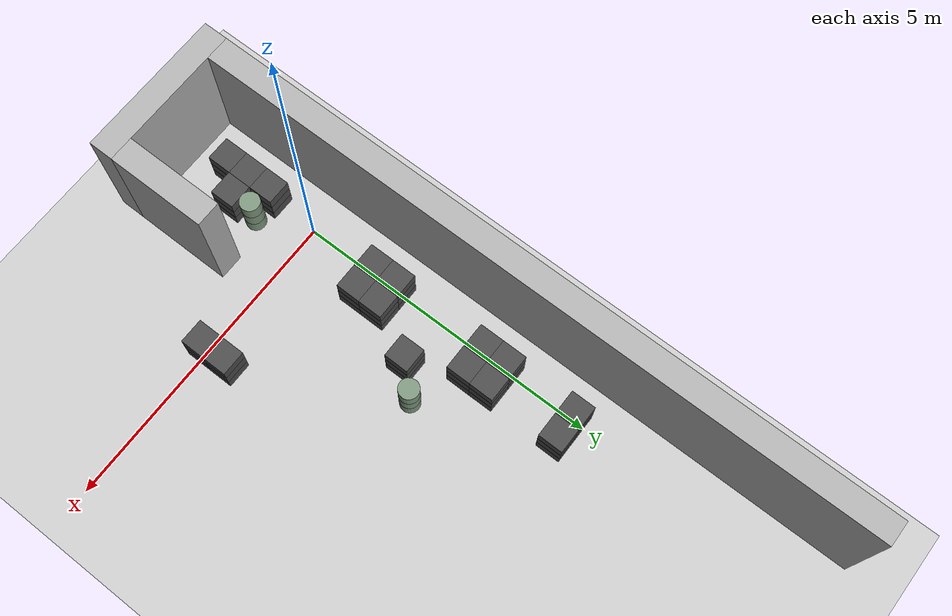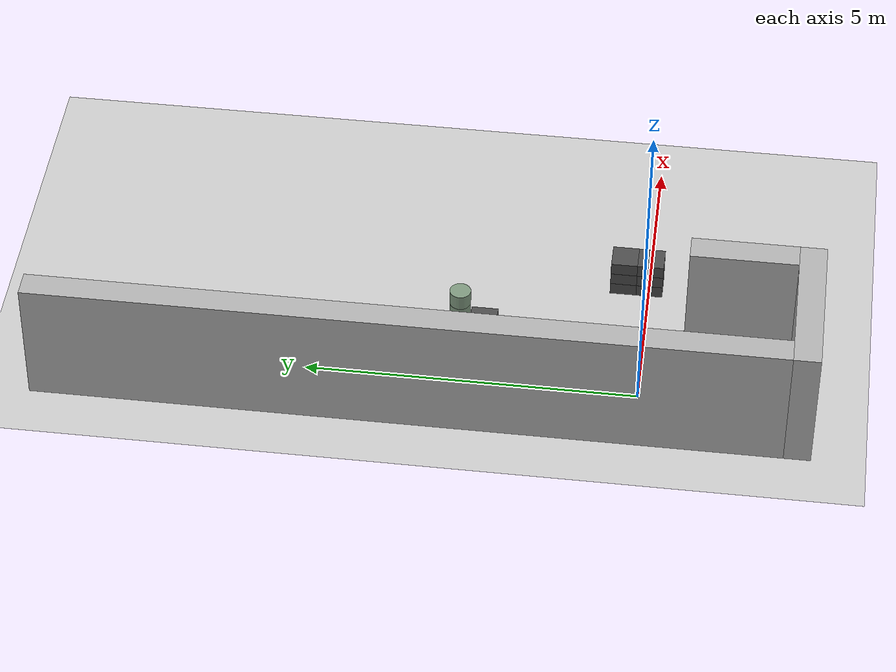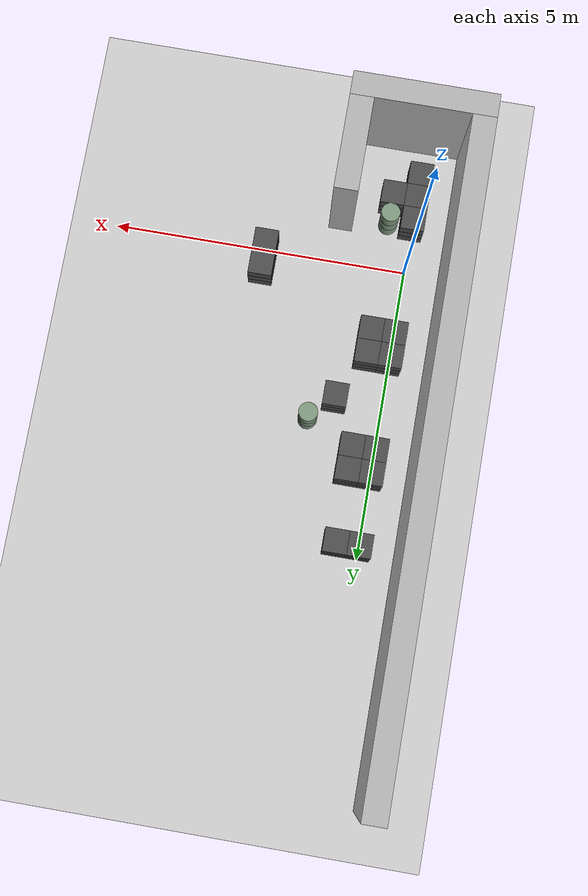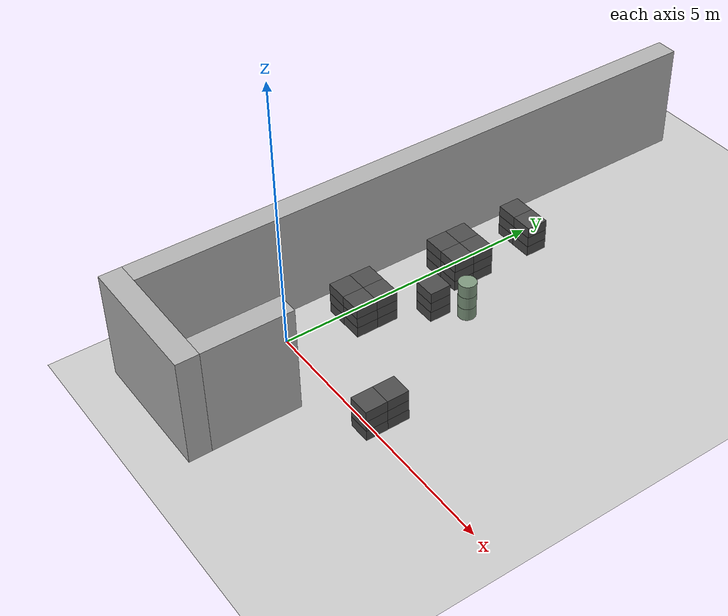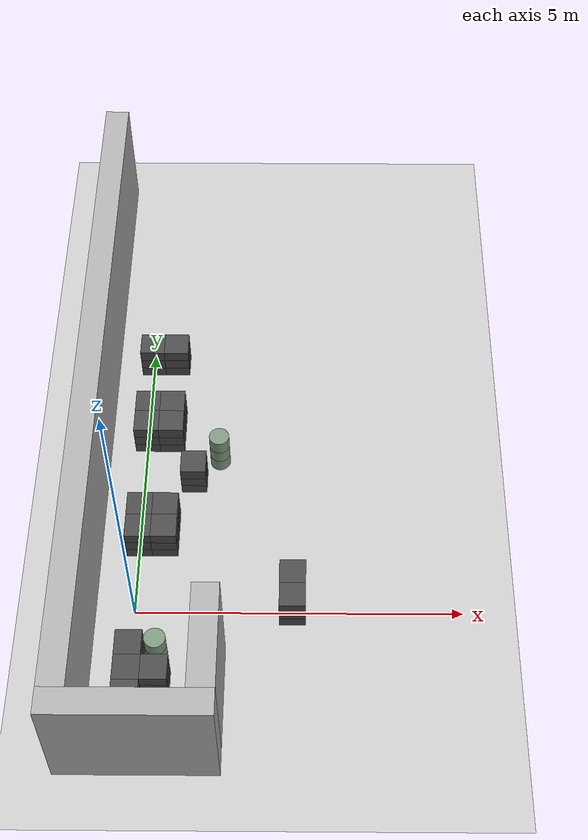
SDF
<sdf version="1.6">
 <world name="default">
  <include><uri>model://ground_plane</uri></include>
  <model name="wall_0">
   <pose frame="sim_world">-0.8 3.4 1.0 0 0 0</pose>
   <static>True</static>
   <link name="wall_0_link">
    <inertial>
     <mass>100</mass>
     <inertia>
      <ixx>0.166667</ixx>
      <ixy>0</ixy>
      <ixz>0</ixz>
      <iyy>0.166667</iyy>
      <iyz>0</iyz>
      <izz>0.166667</izz>
     </inertia>
    </inertial>
    <collision name="wall_0_collision">
     <geometry><box><size>0.4 11.200000000000001 2.0</size></box></geometry>
     <max_contacts>100</max_contacts>
    </collision>
    <visual name="wall_0_visual">
     <geometry><box><size>0.4 11.200000000000001 2.0</size></box></geometry>
     <material><ambient>0.7 0.7 0.7 1</ambient><diffuse>0.7 0.7 0.7 1</diffuse></material>
    </visual>
   </link>
  </model>
  <model name="wall_1">
   <pose frame="sim_world">1.2 -1.4 1.0 0 0 0</pose>
   <static>True</static>
   <link name="wall_1_link">
    <inertial>
     <mass>100</mass>
     <inertia>
      <ixx>0.166667</ixx>
      <ixy>0</ixy>
      <ixz>0</ixz>
      <iyy>0.166667</iyy>
      <iyz>0</iyz>
      <izz>0.166667</izz>
     </inertia>
    </inertial>
    <collision name="wall_1_collision">
     <geometry><box><size>0.4 1.6 2.0</size></box></geometry>
     <max_contacts>100</max_contacts>
    </collision>
    <visual name="wall_1_visual">
     <geometry><box><size>0.4 1.6 2.0</size></box></geometry>
     <material><ambient>0.7 0.7 0.7 1</ambient><diffuse>0.7 0.7 0.7 1</diffuse></material>
    </visual>
   </link>
  </model>
  <model name="wall_7">
   <pose frame="sim_world">0.2 -2.4 1.0 0 0 0</pose>
   <static>True</static>
   <link name="wall_7_link">
    <inertial>
     <mass>100</mass>
     <inertia>
      <ixx>0.166667</ixx>
      <ixy>0</ixy>
      <ixz>0</ixz>
      <iyy>0.166667</iyy>
      <iyz>0</iyz>
      <izz>0.166667</izz>
     </inertia>
    </inertial>
    <collision name="wall_7_collision">
     <geometry><box><size>2.4000000000000004 0.4 2.0</size></box></geometry>
     <max_contacts>100</max_contacts>
    </collision>
    <visual name="wall_7_visual">
     <geometry><box><size>2.4000000000000004 0.4 2.0</size></box></geometry>
     <material><ambient>0.7 0.7 0.7 1</ambient><diffuse>0.7 0.7 0.7 1</diffuse></material>
    </visual>
   </link>
  </model>
  <model name="box_0">
   <pose frame="sim_world">0.0 -1.6 0.1 0 -0 0</pose>
   <static>True</static>
   <link name="box_0_link">
    <inertial>
     <mass>100</mass>
     <inertia>
      <ixx>0.166667</ixx>
      <ixy>0</ixy>
      <ixz>0</ixz>
      <iyy>0.166667</iyy>
      <iyz>0</iyz>
      <izz>0.166667</izz>
     </inertia>
    </inertial>
    <collision name="box_0_collision">
     <geometry><box><size>0.4 0.4 0.2</size></box></geometry>
     <max_contacts>100</max_contacts>
    </collision>
    <visual name="box_0_visual">
     <geometry><box><size>0.4 0.4 0.2</size></box></geometry>
     <material><ambient>0.3 0.3 0.3 1</ambient><diffuse>0.3 0.3 0.3 1</diffuse></material>
    </visual>
   </link>
  </model>
  <model name="box_1">
   <pose frame="sim_world">0.0 -1.6 0.3 0 -0 0</pose>
   <static>True</static>
   <link name="box_1_link">
    <inertial>
     <mass>100</mass>
     <inertia>
      <ixx>0.166667</ixx>
      <ixy>0</ixy>
      <ixz>0</ixz>
      <iyy>0.166667</iyy>
      <iyz>0</iyz>
      <izz>0.166667</izz>
     </inertia>
    </inertial>
    <collision name="box_1_collision">
     <geometry><box><size>0.4 0.4 0.2</size></box></geometry>
     <max_contacts>100</max_contacts>
    </collision>
    <visual name="box_1_visual">
     <geometry><box><size>0.4 0.4 0.2</size></box></geometry>
     <material><ambient>0.3 0.3 0.3 1</ambient><diffuse>0.3 0.3 0.3 1</diffuse></material>
    </visual>
   </link>
  </model>
  <model name="box_2">
   <pose frame="sim_world">0.0 -1.6 0.5 0 -0 0</pose>
   <static>True</static>
   <link name="box_2_link">
    <inertial>
     <mass>100</mass>
     <inertia>
      <ixx>0.166667</ixx>
      <ixy>0</ixy>
      <ixz>0</ixz>
      <iyy>0.166667</iyy>
      <iyz>0</iyz>
      <izz>0.166667</izz>
     </inertia>
    </inertial>
    <collision name="box_2_collision">
     <geometry><box><size>0.4 0.4 0.2</size></box></geometry>
     <max_contacts>100</max_contacts>
    </collision>
    <visual name="box_2_visual">
     <geometry><box><size>0.4 0.4 0.2</size></box></geometry>
     <material><ambient>0.3 0.3 0.3 1</ambient><diffuse>0.3 0.3 0.3 1</diffuse></material>
    </visual>
   </link>
  </model>
  <model name="box_3">
   <pose frame="sim_world">0.0 -1.2 0.1 0 -0 0</pose>
   <static>True</static>
   <link name="box_3_link">
    <inertial>
     <mass>100</mass>
     <inertia>
      <ixx>0.166667</ixx>
      <ixy>0</ixy>
      <ixz>0</ixz>
      <iyy>0.166667</iyy>
      <iyz>0</iyz>
      <izz>0.166667</izz>
     </inertia>
    </inertial>
    <collision name="box_3_collision">
     <geometry><box><size>0.4 0.4 0.2</size></box></geometry>
     <max_contacts>100</max_contacts>
    </collision>
    <visual name="box_3_visual">
     <geometry><box><size>0.4 0.4 0.2</size></box></geometry>
     <material><ambient>0.3 0.3 0.3 1</ambient><diffuse>0.3 0.3 0.3 1</diffuse></material>
    </visual>
   </link>
  </model>
  <model name="box_4">
   <pose frame="sim_world">0.0 -1.2 0.3 0 -0 0</pose>
   <static>True</static>
   <link name="box_4_link">
    <inertial>
     <mass>100</mass>
     <inertia>
      <ixx>0.166667</ixx>
      <ixy>0</ixy>
      <ixz>0</ixz>
      <iyy>0.166667</iyy>
      <iyz>0</iyz>
      <izz>0.166667</izz>
     </inertia>
    </inertial>
    <collision name="box_4_collision">
     <geometry><box><size>0.4 0.4 0.2</size></box></geometry>
     <max_contacts>100</max_contacts>
    </collision>
    <visual name="box_4_visual">
     <geometry><box><size>0.4 0.4 0.2</size></box></geometry>
     <material><ambient>0.3 0.3 0.3 1</ambient><diffuse>0.3 0.3 0.3 1</diffuse></material>
    </visual>
   </link>
  </model>
  <model name="box_5">
   <pose frame="sim_world">0.0 -1.2 0.5 0 -0 0</pose>
   <static>True</static>
   <link name="box_5_link">
    <inertial>
     <mass>100</mass>
     <inertia>
      <ixx>0.166667</ixx>
      <ixy>0</ixy>
      <ixz>0</ixz>
      <iyy>0.166667</iyy>
      <iyz>0</iyz>
      <izz>0.166667</izz>
     </inertia>
    </inertial>
    <collision name="box_5_collision">
     <geometry><box><size>0.4 0.4 0.2</size></box></geometry>
     <max_contacts>100</max_contacts>
    </collision>
    <visual name="box_5_visual">
     <geometry><box><size>0.4 0.4 0.2</size></box></geometry>
     <material><ambient>0.3 0.3 0.3 1</ambient><diffuse>0.3 0.3 0.3 1</diffuse></material>
    </visual>
   </link>
  </model>
  <model name="box_6">
   <pose frame="sim_world">0.0 -0.8 0.1 0 -0 0</pose>
   <static>True</static>
   <link name="box_6_link">
    <inertial>
     <mass>100</mass>
     <inertia>
      <ixx>0.166667</ixx>
      <ixy>0</ixy>
      <ixz>0</ixz>
      <iyy>0.166667</iyy>
      <iyz>0</iyz>
      <izz>0.166667</izz>
     </inertia>
    </inertial>
    <collision name="box_6_collision">
     <geometry><box><size>0.4 0.4 0.2</size></box></geometry>
     <max_contacts>100</max_contacts>
    </collision>
    <visual name="box_6_visual">
     <geometry><box><size>0.4 0.4 0.2</size></box></geometry>
     <material><ambient>0.3 0.3 0.3 1</ambient><diffuse>0.3 0.3 0.3 1</diffuse></material>
    </visual>
   </link>
  </model>
  <model name="box_7">
   <pose frame="sim_world">0.0 -0.8 0.3 0 -0 0</pose>
   <static>True</static>
   <link name="box_7_link">
    <inertial>
     <mass>100</mass>
     <inertia>
      <ixx>0.166667</ixx>
      <ixy>0</ixy>
      <ixz>0</ixz>
      <iyy>0.166667</iyy>
      <iyz>0</iyz>
      <izz>0.166667</izz>
     </inertia>
    </inertial>
    <collision name="box_7_collision">
     <geometry><box><size>0.4 0.4 0.2</size></box></geometry>
     <max_contacts>100</max_contacts>
    </collision>
    <visual name="box_7_visual">
     <geometry><box><size>0.4 0.4 0.2</size></box></geometry>
     <material><ambient>0.3 0.3 0.3 1</ambient><diffuse>0.3 0.3 0.3 1</diffuse></material>
    </visual>
   </link>
  </model>
  <model name="box_8">
   <pose frame="sim_world">0.0 -0.8 0.5 0 -0 0</pose>
   <static>True</static>
   <link name="box_8_link">
    <inertial>
     <mass>100</mass>
     <inertia>
      <ixx>0.166667</ixx>
      <ixy>0</ixy>
      <ixz>0</ixz>
      <iyy>0.166667</iyy>
      <iyz>0</iyz>
      <izz>0.166667</izz>
     </inertia>
    </inertial>
    <collision name="box_8_collision">
     <geometry><box><size>0.4 0.4 0.2</size></box></geometry>
     <max_contacts>100</max_contacts>
    </collision>
    <visual name="box_8_visual">
     <geometry><box><size>0.4 0.4 0.2</size></box></geometry>
     <material><ambient>0.3 0.3 0.3 1</ambient><diffuse>0.3 0.3 0.3 1</diffuse></material>
    </visual>
   </link>
  </model>
  <model name="box_9">
   <pose frame="sim_world">0.0 1.2 0.1 0 -0 0</pose>
   <static>True</static>
   <link name="box_9_link">
    <inertial>
     <mass>100</mass>
     <inertia>
      <ixx>0.166667</ixx>
      <ixy>0</ixy>
      <ixz>0</ixz>
      <iyy>0.166667</iyy>
      <iyz>0</iyz>
      <izz>0.166667</izz>
     </inertia>
    </inertial>
    <collision name="box_9_collision">
     <geometry><box><size>0.4 0.4 0.2</size></box></geometry>
     <max_contacts>100</max_contacts>
    </collision>
    <visual name="box_9_visual">
     <geometry><box><size>0.4 0.4 0.2</size></box></geometry>
     <material><ambient>0.3 0.3 0.3 1</ambient><diffuse>0.3 0.3 0.3 1</diffuse></material>
    </visual>
   </link>
  </model>
  <model name="box_10">
   <pose frame="sim_world">0.0 1.2 0.3 0 -0 0</pose>
   <static>True</static>
   <link name="box_10_link">
    <inertial>
     <mass>100</mass>
     <inertia>
      <ixx>0.166667</ixx>
      <ixy>0</ixy>
      <ixz>0</ixz>
      <iyy>0.166667</iyy>
      <iyz>0</iyz>
      <izz>0.166667</izz>
     </inertia>
    </inertial>
    <collision name="box_10_collision">
     <geometry><box><size>0.4 0.4 0.2</size></box></geometry>
     <max_contacts>100</max_contacts>
    </collision>
    <visual name="box_10_visual">
     <geometry><box><size>0.4 0.4 0.2</size></box></geometry>
     <material><ambient>0.3 0.3 0.3 1</ambient><diffuse>0.3 0.3 0.3 1</diffuse></material>
    </visual>
   </link>
  </model>
  <model name="box_11">
   <pose frame="sim_world">0.0 1.2 0.5 0 -0 0</pose>
   <static>True</static>
   <link name="box_11_link">
    <inertial>
     <mass>100</mass>
     <inertia>
      <ixx>0.166667</ixx>
      <ixy>0</ixy>
      <ixz>0</ixz>
      <iyy>0.166667</iyy>
      <iyz>0</iyz>
      <izz>0.166667</izz>
     </inertia>
    </inertial>
    <collision name="box_11_collision">
     <geometry><box><size>0.4 0.4 0.2</size></box></geometry>
     <max_contacts>100</max_contacts>
    </collision>
    <visual name="box_11_visual">
     <geometry><box><size>0.4 0.4 0.2</size></box></geometry>
     <material><ambient>0.3 0.3 0.3 1</ambient><diffuse>0.3 0.3 0.3 1</diffuse></material>
    </visual>
   </link>
  </model>
  <model name="box_12">
   <pose frame="sim_world">0.0 1.6 0.1 0 -0 0</pose>
   <static>True</static>
   <link name="box_12_link">
    <inertial>
     <mass>100</mass>
     <inertia>
      <ixx>0.166667</ixx>
      <ixy>0</ixy>
      <ixz>0</ixz>
      <iyy>0.166667</iyy>
      <iyz>0</iyz>
      <izz>0.166667</izz>
     </inertia>
    </inertial>
    <collision name="box_12_collision">
     <geometry><box><size>0.4 0.4 0.2</size></box></geometry>
     <max_contacts>100</max_contacts>
    </collision>
    <visual name="box_12_visual">
     <geometry><box><size>0.4 0.4 0.2</size></box></geometry>
     <material><ambient>0.3 0.3 0.3 1</ambient><diffuse>0.3 0.3 0.3 1</diffuse></material>
    </visual>
   </link>
  </model>
  <model name="box_13">
   <pose frame="sim_world">0.0 1.6 0.3 0 -0 0</pose>
   <static>True</static>
   <link name="box_13_link">
    <inertial>
     <mass>100</mass>
     <inertia>
      <ixx>0.166667</ixx>
      <ixy>0</ixy>
      <ixz>0</ixz>
      <iyy>0.166667</iyy>
      <iyz>0</iyz>
      <izz>0.166667</izz>
     </inertia>
    </inertial>
    <collision name="box_13_collision">
     <geometry><box><size>0.4 0.4 0.2</size></box></geometry>
     <max_contacts>100</max_contacts>
    </collision>
    <visual name="box_13_visual">
     <geometry><box><size>0.4 0.4 0.2</size></box></geometry>
     <material><ambient>0.3 0.3 0.3 1</ambient><diffuse>0.3 0.3 0.3 1</diffuse></material>
    </visual>
   </link>
  </model>
  <model name="box_14">
   <pose frame="sim_world">0.0 1.6 0.5 0 -0 0</pose>
   <static>True</static>
   <link name="box_14_link">
    <inertial>
     <mass>100</mass>
     <inertia>
      <ixx>0.166667</ixx>
      <ixy>0</ixy>
      <ixz>0</ixz>
      <iyy>0.166667</iyy>
      <iyz>0</iyz>
      <izz>0.166667</izz>
     </inertia>
    </inertial>
    <collision name="box_14_collision">
     <geometry><box><size>0.4 0.4 0.2</size></box></geometry>
     <max_contacts>100</max_contacts>
    </collision>
    <visual name="box_14_visual">
     <geometry><box><size>0.4 0.4 0.2</size></box></geometry>
     <material><ambient>0.3 0.3 0.3 1</ambient><diffuse>0.3 0.3 0.3 1</diffuse></material>
    </visual>
   </link>
  </model>
  <model name="box_15">
   <pose frame="sim_world">0.0 3.2 0.1 0 -0 0</pose>
   <static>True</static>
   <link name="box_15_link">
    <inertial>
     <mass>100</mass>
     <inertia>
      <ixx>0.166667</ixx>
      <ixy>0</ixy>
      <ixz>0</ixz>
      <iyy>0.166667</iyy>
      <iyz>0</iyz>
      <izz>0.166667</izz>
     </inertia>
    </inertial>
    <collision name="box_15_collision">
     <geometry><box><size>0.4 0.4 0.2</size></box></geometry>
     <max_contacts>100</max_contacts>
    </collision>
    <visual name="box_15_visual">
     <geometry><box><size>0.4 0.4 0.2</size></box></geometry>
     <material><ambient>0.3 0.3 0.3 1</ambient><diffuse>0.3 0.3 0.3 1</diffuse></material>
    </visual>
   </link>
  </model>
  <model name="box_16">
   <pose frame="sim_world">0.0 3.2 0.3 0 -0 0</pose>
   <static>True</static>
   <link name="box_16_link">
    <inertial>
     <mass>100</mass>
     <inertia>
      <ixx>0.166667</ixx>
      <ixy>0</ixy>
      <ixz>0</ixz>
      <iyy>0.166667</iyy>
      <iyz>0</iyz>
      <izz>0.166667</izz>
     </inertia>
    </inertial>
    <collision name="box_16_collision">
     <geometry><box><size>0.4 0.4 0.2</size></box></geometry>
     <max_contacts>100</max_contacts>
    </collision>
    <visual name="box_16_visual">
     <geometry><box><size>0.4 0.4 0.2</size></box></geometry>
     <material><ambient>0.3 0.3 0.3 1</ambient><diffuse>0.3 0.3 0.3 1</diffuse></material>
    </visual>
   </link>
  </model>
  <model name="box_17">
   <pose frame="sim_world">0.0 3.2 0.5 0 -0 0</pose>
   <static>True</static>
   <link name="box_17_link">
    <inertial>
     <mass>100</mass>
     <inertia>
      <ixx>0.166667</ixx>
      <ixy>0</ixy>
      <ixz>0</ixz>
      <iyy>0.166667</iyy>
      <iyz>0</iyz>
      <izz>0.166667</izz>
     </inertia>
    </inertial>
    <collision name="box_17_collision">
     <geometry><box><size>0.4 0.4 0.2</size></box></geometry>
     <max_contacts>100</max_contacts>
    </collision>
    <visual name="box_17_visual">
     <geometry><box><size>0.4 0.4 0.2</size></box></geometry>
     <material><ambient>0.3 0.3 0.3 1</ambient><diffuse>0.3 0.3 0.3 1</diffuse></material>
    </visual>
   </link>
  </model>
  <model name="box_18">
   <pose frame="sim_world">0.0 3.6 0.1 0 -0 0</pose>
   <static>True</static>
   <link name="box_18_link">
    <inertial>
     <mass>100</mass>
     <inertia>
      <ixx>0.166667</ixx>
      <ixy>0</ixy>
      <ixz>0</ixz>
      <iyy>0.166667</iyy>
      <iyz>0</iyz>
      <izz>0.166667</izz>
     </inertia>
    </inertial>
    <collision name="box_18_collision">
     <geometry><box><size>0.4 0.4 0.2</size></box></geometry>
     <max_contacts>100</max_contacts>
    </collision>
    <visual name="box_18_visual">
     <geometry><box><size>0.4 0.4 0.2</size></box></geometry>
     <material><ambient>0.3 0.3 0.3 1</ambient><diffuse>0.3 0.3 0.3 1</diffuse></material>
    </visual>
   </link>
  </model>
  <model name="box_19">
   <pose frame="sim_world">0.0 3.6 0.3 0 -0 0</pose>
   <static>True</static>
   <link name="box_19_link">
    <inertial>
     <mass>100</mass>
     <inertia>
      <ixx>0.166667</ixx>
      <ixy>0</ixy>
      <ixz>0</ixz>
      <iyy>0.166667</iyy>
      <iyz>0</iyz>
      <izz>0.166667</izz>
     </inertia>
    </inertial>
    <collision name="box_19_collision">
     <geometry><box><size>0.4 0.4 0.2</size></box></geometry>
     <max_contacts>100</max_contacts>
    </collision>
    <visual name="box_19_visual">
     <geometry><box><size>0.4 0.4 0.2</size></box></geometry>
     <material><ambient>0.3 0.3 0.3 1</ambient><diffuse>0.3 0.3 0.3 1</diffuse></material>
    </visual>
   </link>
  </model>
  <model name="box_20">
   <pose frame="sim_world">0.0 3.6 0.5 0 -0 0</pose>
   <static>True</static>
   <link name="box_20_link">
    <inertial>
     <mass>100</mass>
     <inertia>
      <ixx>0.166667</ixx>
      <ixy>0</ixy>
      <ixz>0</ixz>
      <iyy>0.166667</iyy>
      <iyz>0</iyz>
      <izz>0.166667</izz>
     </inertia>
    </inertial>
    <collision name="box_20_collision">
     <geometry><box><size>0.4 0.4 0.2</size></box></geometry>
     <max_contacts>100</max_contacts>
    </collision>
    <visual name="box_20_visual">
     <geometry><box><size>0.4 0.4 0.2</size></box></geometry>
     <material><ambient>0.3 0.3 0.3 1</ambient><diffuse>0.3 0.3 0.3 1</diffuse></material>
    </visual>
   </link>
  </model>
  <model name="box_21">
   <pose frame="sim_world">0.0 4.8 0.1 0 -0 0</pose>
   <static>True</static>
   <link name="box_21_link">
    <inertial>
     <mass>100</mass>
     <inertia>
      <ixx>0.166667</ixx>
      <ixy>0</ixy>
      <ixz>0</ixz>
      <iyy>0.166667</iyy>
      <iyz>0</iyz>
      <izz>0.166667</izz>
     </inertia>
    </inertial>
    <collision name="box_21_collision">
     <geometry><box><size>0.4 0.4 0.2</size></box></geometry>
     <max_contacts>100</max_contacts>
    </collision>
    <visual name="box_21_visual">
     <geometry><box><size>0.4 0.4 0.2</size></box></geometry>
     <material><ambient>0.3 0.3 0.3 1</ambient><diffuse>0.3 0.3 0.3 1</diffuse></material>
    </visual>
   </link>
  </model>
  <model name="box_22">
   <pose frame="sim_world">0.0 4.8 0.3 0 -0 0</pose>
   <static>True</static>
   <link name="box_22_link">
    <inertial>
     <mass>100</mass>
     <inertia>
      <ixx>0.166667</ixx>
      <ixy>0</ixy>
      <ixz>0</ixz>
      <iyy>0.166667</iyy>
      <iyz>0</iyz>
      <izz>0.166667</izz>
     </inertia>
    </inertial>
    <collision name="box_22_collision">
     <geometry><box><size>0.4 0.4 0.2</size></box></geometry>
     <max_contacts>100</max_contacts>
    </collision>
    <visual name="box_22_visual">
     <geometry><box><size>0.4 0.4 0.2</size></box></geometry>
     <material><ambient>0.3 0.3 0.3 1</ambient><diffuse>0.3 0.3 0.3 1</diffuse></material>
    </visual>
   </link>
  </model>
  <model name="box_23">
   <pose frame="sim_world">0.0 4.8 0.5 0 -0 0</pose>
   <static>True</static>
   <link name="box_23_link">
    <inertial>
     <mass>100</mass>
     <inertia>
      <ixx>0.166667</ixx>
      <ixy>0</ixy>
      <ixz>0</ixz>
      <iyy>0.166667</iyy>
      <iyz>0</iyz>
      <izz>0.166667</izz>
     </inertia>
    </inertial>
    <collision name="box_23_collision">
     <geometry><box><size>0.4 0.4 0.2</size></box></geometry>
     <max_contacts>100</max_contacts>
    </collision>
    <visual name="box_23_visual">
     <geometry><box><size>0.4 0.4 0.2</size></box></geometry>
     <material><ambient>0.3 0.3 0.3 1</ambient><diffuse>0.3 0.3 0.3 1</diffuse></material>
    </visual>
   </link>
  </model>
  <model name="box_39">
   <pose frame="sim_world">0.4 -1.2 0.1 0 -0 0</pose>
   <static>True</static>
   <link name="box_39_link">
    <inertial>
     <mass>100</mass>
     <inertia>
      <ixx>0.166667</ixx>
      <ixy>0</ixy>
      <ixz>0</ixz>
      <iyy>0.166667</iyy>
      <iyz>0</iyz>
      <izz>0.166667</izz>
     </inertia>
    </inertial>
    <collision name="box_39_collision">
     <geometry><box><size>0.4 0.4 0.2</size></box></geometry>
     <max_contacts>100</max_contacts>
    </collision>
    <visual name="box_39_visual">
     <geometry><box><size>0.4 0.4 0.2</size></box></geometry>
     <material><ambient>0.3 0.3 0.3 1</ambient><diffuse>0.3 0.3 0.3 1</diffuse></material>
    </visual>
   </link>
  </model>
  <model name="box_40">
   <pose frame="sim_world">0.4 -1.2 0.3 0 -0 0</pose>
   <static>True</static>
   <link name="box_40_link">
    <inertial>
     <mass>100</mass>
     <inertia>
      <ixx>0.166667</ixx>
      <ixy>0</ixy>
      <ixz>0</ixz>
      <iyy>0.166667</iyy>
      <iyz>0</iyz>
      <izz>0.166667</izz>
     </inertia>
    </inertial>
    <collision name="box_40_collision">
     <geometry><box><size>0.4 0.4 0.2</size></box></geometry>
     <max_contacts>100</max_contacts>
    </collision>
    <visual name="box_40_visual">
     <geometry><box><size>0.4 0.4 0.2</size></box></geometry>
     <material><ambient>0.3 0.3 0.3 1</ambient><diffuse>0.3 0.3 0.3 1</diffuse></material>
    </visual>
   </link>
  </model>
  <model name="box_41">
   <pose frame="sim_world">0.4 -1.2 0.5 0 -0 0</pose>
   <static>True</static>
   <link name="box_41_link">
    <inertial>
     <mass>100</mass>
     <inertia>
      <ixx>0.166667</ixx>
      <ixy>0</ixy>
      <ixz>0</ixz>
      <iyy>0.166667</iyy>
      <iyz>0</iyz>
      <izz>0.166667</izz>
     </inertia>
    </inertial>
    <collision name="box_41_collision">
     <geometry><box><size>0.4 0.4 0.2</size></box></geometry>
     <max_contacts>100</max_contacts>
    </collision>
    <visual name="box_41_visual">
     <geometry><box><size>0.4 0.4 0.2</size></box></geometry>
     <material><ambient>0.3 0.3 0.3 1</ambient><diffuse>0.3 0.3 0.3 1</diffuse></material>
    </visual>
   </link>
  </model>
  <model name="box_42">
   <pose frame="sim_world">0.4 1.2 0.1 0 -0 0</pose>
   <static>True</static>
   <link name="box_42_link">
    <inertial>
     <mass>100</mass>
     <inertia>
      <ixx>0.166667</ixx>
      <ixy>0</ixy>
      <ixz>0</ixz>
      <iyy>0.166667</iyy>
      <iyz>0</iyz>
      <izz>0.166667</izz>
     </inertia>
    </inertial>
    <collision name="box_42_collision">
     <geometry><box><size>0.4 0.4 0.2</size></box></geometry>
     <max_contacts>100</max_contacts>
    </collision>
    <visual name="box_42_visual">
     <geometry><box><size>0.4 0.4 0.2</size></box></geometry>
     <material><ambient>0.3 0.3 0.3 1</ambient><diffuse>0.3 0.3 0.3 1</diffuse></material>
    </visual>
   </link>
  </model>
  <model name="box_43">
   <pose frame="sim_world">0.4 1.2 0.3 0 -0 0</pose>
   <static>True</static>
   <link name="box_43_link">
    <inertial>
     <mass>100</mass>
     <inertia>
      <ixx>0.166667</ixx>
      <ixy>0</ixy>
      <ixz>0</ixz>
      <iyy>0.166667</iyy>
      <iyz>0</iyz>
      <izz>0.166667</izz>
     </inertia>
    </inertial>
    <collision name="box_43_collision">
     <geometry><box><size>0.4 0.4 0.2</size></box></geometry>
     <max_contacts>100</max_contacts>
    </collision>
    <visual name="box_43_visual">
     <geometry><box><size>0.4 0.4 0.2</size></box></geometry>
     <material><ambient>0.3 0.3 0.3 1</ambient><diffuse>0.3 0.3 0.3 1</diffuse></material>
    </visual>
   </link>
  </model>
  <model name="box_44">
   <pose frame="sim_world">0.4 1.2 0.5 0 -0 0</pose>
   <static>True</static>
   <link name="box_44_link">
    <inertial>
     <mass>100</mass>
     <inertia>
      <ixx>0.166667</ixx>
      <ixy>0</ixy>
      <ixz>0</ixz>
      <iyy>0.166667</iyy>
      <iyz>0</iyz>
      <izz>0.166667</izz>
     </inertia>
    </inertial>
    <collision name="box_44_collision">
     <geometry><box><size>0.4 0.4 0.2</size></box></geometry>
     <max_contacts>100</max_contacts>
    </collision>
    <visual name="box_44_visual">
     <geometry><box><size>0.4 0.4 0.2</size></box></geometry>
     <material><ambient>0.3 0.3 0.3 1</ambient><diffuse>0.3 0.3 0.3 1</diffuse></material>
    </visual>
   </link>
  </model>
  <model name="box_45">
   <pose frame="sim_world">0.4 1.6 0.1 0 -0 0</pose>
   <static>True</static>
   <link name="box_45_link">
    <inertial>
     <mass>100</mass>
     <inertia>
      <ixx>0.166667</ixx>
      <ixy>0</ixy>
      <ixz>0</ixz>
      <iyy>0.166667</iyy>
      <iyz>0</iyz>
      <izz>0.166667</izz>
     </inertia>
    </inertial>
    <collision name="box_45_collision">
     <geometry><box><size>0.4 0.4 0.2</size></box></geometry>
     <max_contacts>100</max_contacts>
    </collision>
    <visual name="box_45_visual">
     <geometry><box><size>0.4 0.4 0.2</size></box></geometry>
     <material><ambient>0.3 0.3 0.3 1</ambient><diffuse>0.3 0.3 0.3 1</diffuse></material>
    </visual>
   </link>
  </model>
  <model name="box_46">
   <pose frame="sim_world">0.4 1.6 0.3 0 -0 0</pose>
   <static>True</static>
   <link name="box_46_link">
    <inertial>
     <mass>100</mass>
     <inertia>
      <ixx>0.166667</ixx>
      <ixy>0</ixy>
      <ixz>0</ixz>
      <iyy>0.166667</iyy>
      <iyz>0</iyz>
      <izz>0.166667</izz>
     </inertia>
    </inertial>
    <collision name="box_46_collision">
     <geometry><box><size>0.4 0.4 0.2</size></box></geometry>
     <max_contacts>100</max_contacts>
    </collision>
    <visual name="box_46_visual">
     <geometry><box><size>0.4 0.4 0.2</size></box></geometry>
     <material><ambient>0.3 0.3 0.3 1</ambient><diffuse>0.3 0.3 0.3 1</diffuse></material>
    </visual>
   </link>
  </model>
  <model name="box_47">
   <pose frame="sim_world">0.4 1.6 0.5 0 -0 0</pose>
   <static>True</static>
   <link name="box_47_link">
    <inertial>
     <mass>100</mass>
     <inertia>
      <ixx>0.166667</ixx>
      <ixy>0</ixy>
      <ixz>0</ixz>
      <iyy>0.166667</iyy>
      <iyz>0</iyz>
      <izz>0.166667</izz>
     </inertia>
    </inertial>
    <collision name="box_47_collision">
     <geometry><box><size>0.4 0.4 0.2</size></box></geometry>
     <max_contacts>100</max_contacts>
    </collision>
    <visual name="box_47_visual">
     <geometry><box><size>0.4 0.4 0.2</size></box></geometry>
     <material><ambient>0.3 0.3 0.3 1</ambient><diffuse>0.3 0.3 0.3 1</diffuse></material>
    </visual>
   </link>
  </model>
  <model name="box_48">
   <pose frame="sim_world">0.4 3.2 0.1 0 -0 0</pose>
   <static>True</static>
   <link name="box_48_link">
    <inertial>
     <mass>100</mass>
     <inertia>
      <ixx>0.166667</ixx>
      <ixy>0</ixy>
      <ixz>0</ixz>
      <iyy>0.166667</iyy>
      <iyz>0</iyz>
      <izz>0.166667</izz>
     </inertia>
    </inertial>
    <collision name="box_48_collision">
     <geometry><box><size>0.4 0.4 0.2</size></box></geometry>
     <max_contacts>100</max_contacts>
    </collision>
    <visual name="box_48_visual">
     <geometry><box><size>0.4 0.4 0.2</size></box></geometry>
     <material><ambient>0.3 0.3 0.3 1</ambient><diffuse>0.3 0.3 0.3 1</diffuse></material>
    </visual>
   </link>
  </model>
  <model name="box_49">
   <pose frame="sim_world">0.4 3.2 0.3 0 -0 0</pose>
   <static>True</static>
   <link name="box_49_link">
    <inertial>
     <mass>100</mass>
     <inertia>
      <ixx>0.166667</ixx>
      <ixy>0</ixy>
      <ixz>0</ixz>
      <iyy>0.166667</iyy>
      <iyz>0</iyz>
      <izz>0.166667</izz>
     </inertia>
    </inertial>
    <collision name="box_49_collision">
     <geometry><box><size>0.4 0.4 0.2</size></box></geometry>
     <max_contacts>100</max_contacts>
    </collision>
    <visual name="box_49_visual">
     <geometry><box><size>0.4 0.4 0.2</size></box></geometry>
     <material><ambient>0.3 0.3 0.3 1</ambient><diffuse>0.3 0.3 0.3 1</diffuse></material>
    </visual>
   </link>
  </model>
  <model name="box_50">
   <pose frame="sim_world">0.4 3.2 0.5 0 -0 0</pose>
   <static>True</static>
   <link name="box_50_link">
    <inertial>
     <mass>100</mass>
     <inertia>
      <ixx>0.166667</ixx>
      <ixy>0</ixy>
      <ixz>0</ixz>
      <iyy>0.166667</iyy>
      <iyz>0</iyz>
      <izz>0.166667</izz>
     </inertia>
    </inertial>
    <collision name="box_50_collision">
     <geometry><box><size>0.4 0.4 0.2</size></box></geometry>
     <max_contacts>100</max_contacts>
    </collision>
    <visual name="box_50_visual">
     <geometry><box><size>0.4 0.4 0.2</size></box></geometry>
     <material><ambient>0.3 0.3 0.3 1</ambient><diffuse>0.3 0.3 0.3 1</diffuse></material>
    </visual>
   </link>
  </model>
  <model name="box_51">
   <pose frame="sim_world">0.4 3.6 0.1 0 -0 0</pose>
   <static>True</static>
   <link name="box_51_link">
    <inertial>
     <mass>100</mass>
     <inertia>
      <ixx>0.166667</ixx>
      <ixy>0</ixy>
      <ixz>0</ixz>
      <iyy>0.166667</iyy>
      <iyz>0</iyz>
      <izz>0.166667</izz>
     </inertia>
    </inertial>
    <collision name="box_51_collision">
     <geometry><box><size>0.4 0.4 0.2</size></box></geometry>
     <max_contacts>100</max_contacts>
    </collision>
    <visual name="box_51_visual">
     <geometry><box><size>0.4 0.4 0.2</size></box></geometry>
     <material><ambient>0.3 0.3 0.3 1</ambient><diffuse>0.3 0.3 0.3 1</diffuse></material>
    </visual>
   </link>
  </model>
  <model name="box_52">
   <pose frame="sim_world">0.4 3.6 0.3 0 -0 0</pose>
   <static>True</static>
   <link name="box_52_link">
    <inertial>
     <mass>100</mass>
     <inertia>
      <ixx>0.166667</ixx>
      <ixy>0</ixy>
      <ixz>0</ixz>
      <iyy>0.166667</iyy>
      <iyz>0</iyz>
      <izz>0.166667</izz>
     </inertia>
    </inertial>
    <collision name="box_52_collision">
     <geometry><box><size>0.4 0.4 0.2</size></box></geometry>
     <max_contacts>100</max_contacts>
    </collision>
    <visual name="box_52_visual">
     <geometry><box><size>0.4 0.4 0.2</size></box></geometry>
     <material><ambient>0.3 0.3 0.3 1</ambient><diffuse>0.3 0.3 0.3 1</diffuse></material>
    </visual>
   </link>
  </model>
  <model name="box_53">
   <pose frame="sim_world">0.4 3.6 0.5 0 -0 0</pose>
   <static>True</static>
   <link name="box_53_link">
    <inertial>
     <mass>100</mass>
     <inertia>
      <ixx>0.166667</ixx>
      <ixy>0</ixy>
      <ixz>0</ixz>
      <iyy>0.166667</iyy>
      <iyz>0</iyz>
      <izz>0.166667</izz>
     </inertia>
    </inertial>
    <collision name="box_53_collision">
     <geometry><box><size>0.4 0.4 0.2</size></box></geometry>
     <max_contacts>100</max_contacts>
    </collision>
    <visual name="box_53_visual">
     <geometry><box><size>0.4 0.4 0.2</size></box></geometry>
     <material><ambient>0.3 0.3 0.3 1</ambient><diffuse>0.3 0.3 0.3 1</diffuse></material>
    </visual>
   </link>
  </model>
  <model name="box_54">
   <pose frame="sim_world">0.4 4.8 0.1 0 -0 0</pose>
   <static>True</static>
   <link name="box_54_link">
    <inertial>
     <mass>100</mass>
     <inertia>
      <ixx>0.166667</ixx>
      <ixy>0</ixy>
      <ixz>0</ixz>
      <iyy>0.166667</iyy>
      <iyz>0</iyz>
      <izz>0.166667</izz>
     </inertia>
    </inertial>
    <collision name="box_54_collision">
     <geometry><box><size>0.4 0.4 0.2</size></box></geometry>
     <max_contacts>100</max_contacts>
    </collision>
    <visual name="box_54_visual">
     <geometry><box><size>0.4 0.4 0.2</size></box></geometry>
     <material><ambient>0.3 0.3 0.3 1</ambient><diffuse>0.3 0.3 0.3 1</diffuse></material>
    </visual>
   </link>
  </model>
  <model name="box_55">
   <pose frame="sim_world">0.4 4.8 0.3 0 -0 0</pose>
   <static>True</static>
   <link name="box_55_link">
    <inertial>
     <mass>100</mass>
     <inertia>
      <ixx>0.166667</ixx>
      <ixy>0</ixy>
      <ixz>0</ixz>
      <iyy>0.166667</iyy>
      <iyz>0</iyz>
      <izz>0.166667</izz>
     </inertia>
    </inertial>
    <collision name="box_55_collision">
     <geometry><box><size>0.4 0.4 0.2</size></box></geometry>
     <max_contacts>100</max_contacts>
    </collision>
    <visual name="box_55_visual">
     <geometry><box><size>0.4 0.4 0.2</size></box></geometry>
     <material><ambient>0.3 0.3 0.3 1</ambient><diffuse>0.3 0.3 0.3 1</diffuse></material>
    </visual>
   </link>
  </model>
  <model name="box_56">
   <pose frame="sim_world">0.4 4.8 0.5 0 -0 0</pose>
   <static>True</static>
   <link name="box_56_link">
    <inertial>
     <mass>100</mass>
     <inertia>
      <ixx>0.166667</ixx>
      <ixy>0</ixy>
      <ixz>0</ixz>
      <iyy>0.166667</iyy>
      <iyz>0</iyz>
      <izz>0.166667</izz>
     </inertia>
    </inertial>
    <collision name="box_56_collision">
     <geometry><box><size>0.4 0.4 0.2</size></box></geometry>
     <max_contacts>100</max_contacts>
    </collision>
    <visual name="box_56_visual">
     <geometry><box><size>0.4 0.4 0.2</size></box></geometry>
     <material><ambient>0.3 0.3 0.3 1</ambient><diffuse>0.3 0.3 0.3 1</diffuse></material>
    </visual>
   </link>
  </model>
  <model name="box_72">
   <pose frame="sim_world">0.8 2.4 0.1 0 -0 0</pose>
   <static>True</static>
   <link name="box_72_link">
    <inertial>
     <mass>100</mass>
     <inertia>
      <ixx>0.166667</ixx>
      <ixy>0</ixy>
      <ixz>0</ixz>
      <iyy>0.166667</iyy>
      <iyz>0</iyz>
      <izz>0.166667</izz>
     </inertia>
    </inertial>
    <collision name="box_72_collision">
     <geometry><box><size>0.4 0.4 0.2</size></box></geometry>
     <max_contacts>100</max_contacts>
    </collision>
    <visual name="box_72_visual">
     <geometry><box><size>0.4 0.4 0.2</size></box></geometry>
     <material><ambient>0.3 0.3 0.3 1</ambient><diffuse>0.3 0.3 0.3 1</diffuse></material>
    </visual>
   </link>
  </model>
  <model name="box_73">
   <pose frame="sim_world">0.8 2.4 0.3 0 -0 0</pose>
   <static>True</static>
   <link name="box_73_link">
    <inertial>
     <mass>100</mass>
     <inertia>
      <ixx>0.166667</ixx>
      <ixy>0</ixy>
      <ixz>0</ixz>
      <iyy>0.166667</iyy>
      <iyz>0</iyz>
      <izz>0.166667</izz>
     </inertia>
    </inertial>
    <collision name="box_73_collision">
     <geometry><box><size>0.4 0.4 0.2</size></box></geometry>
     <max_contacts>100</max_contacts>
    </collision>
    <visual name="box_73_visual">
     <geometry><box><size>0.4 0.4 0.2</size></box></geometry>
     <material><ambient>0.3 0.3 0.3 1</ambient><diffuse>0.3 0.3 0.3 1</diffuse></material>
    </visual>
   </link>
  </model>
  <model name="box_74">
   <pose frame="sim_world">0.8 2.4 0.5 0 -0 0</pose>
   <static>True</static>
   <link name="box_74_link">
    <inertial>
     <mass>100</mass>
     <inertia>
      <ixx>0.166667</ixx>
      <ixy>0</ixy>
      <ixz>0</ixz>
      <iyy>0.166667</iyy>
      <iyz>0</iyz>
      <izz>0.166667</izz>
     </inertia>
    </inertial>
    <collision name="box_74_collision">
     <geometry><box><size>0.4 0.4 0.2</size></box></geometry>
     <max_contacts>100</max_contacts>
    </collision>
    <visual name="box_74_visual">
     <geometry><box><size>0.4 0.4 0.2</size></box></geometry>
     <material><ambient>0.3 0.3 0.3 1</ambient><diffuse>0.3 0.3 0.3 1</diffuse></material>
    </visual>
   </link>
  </model>
  <model name="box_87">
   <pose frame="sim_world">2.4 0.0 0.1 0 -0 0</pose>
   <static>True</static>
   <link name="box_87_link">
    <inertial>
     <mass>100</mass>
     <inertia>
      <ixx>0.166667</ixx>
      <ixy>0</ixy>
      <ixz>0</ixz>
      <iyy>0.166667</iyy>
      <iyz>0</iyz>
      <izz>0.166667</izz>
     </inertia>
    </inertial>
    <collision name="box_87_collision">
     <geometry><box><size>0.4 0.4 0.2</size></box></geometry>
     <max_contacts>100</max_contacts>
    </collision>
    <visual name="box_87_visual">
     <geometry><box><size>0.4 0.4 0.2</size></box></geometry>
     <material><ambient>0.3 0.3 0.3 1</ambient><diffuse>0.3 0.3 0.3 1</diffuse></material>
    </visual>
   </link>
  </model>
  <model name="box_88">
   <pose frame="sim_world">2.4 0.0 0.3 0 -0 0</pose>
   <static>True</static>
   <link name="box_88_link">
    <inertial>
     <mass>100</mass>
     <inertia>
      <ixx>0.166667</ixx>
      <ixy>0</ixy>
      <ixz>0</ixz>
      <iyy>0.166667</iyy>
      <iyz>0</iyz>
      <izz>0.166667</izz>
     </inertia>
    </inertial>
    <collision name="box_88_collision">
     <geometry><box><size>0.4 0.4 0.2</size></box></geometry>
     <max_contacts>100</max_contacts>
    </collision>
    <visual name="box_88_visual">
     <geometry><box><size>0.4 0.4 0.2</size></box></geometry>
     <material><ambient>0.3 0.3 0.3 1</ambient><diffuse>0.3 0.3 0.3 1</diffuse></material>
    </visual>
   </link>
  </model>
  <model name="box_89">
   <pose frame="sim_world">2.4 0.0 0.5 0 -0 0</pose>
   <static>True</static>
   <link name="box_89_link">
    <inertial>
     <mass>100</mass>
     <inertia>
      <ixx>0.166667</ixx>
      <ixy>0</ixy>
      <ixz>0</ixz>
      <iyy>0.166667</iyy>
      <iyz>0</iyz>
      <izz>0.166667</izz>
     </inertia>
    </inertial>
    <collision name="box_89_collision">
     <geometry><box><size>0.4 0.4 0.2</size></box></geometry>
     <max_contacts>100</max_contacts>
    </collision>
    <visual name="box_89_visual">
     <geometry><box><size>0.4 0.4 0.2</size></box></geometry>
     <material><ambient>0.3 0.3 0.3 1</ambient><diffuse>0.3 0.3 0.3 1</diffuse></material>
    </visual>
   </link>
  </model>
  <model name="box_90">
   <pose frame="sim_world">2.4 0.4 0.1 0 -0 0</pose>
   <static>True</static>
   <link name="box_90_link">
    <inertial>
     <mass>100</mass>
     <inertia>
      <ixx>0.166667</ixx>
      <ixy>0</ixy>
      <ixz>0</ixz>
      <iyy>0.166667</iyy>
      <iyz>0</iyz>
      <izz>0.166667</izz>
     </inertia>
    </inertial>
    <collision name="box_90_collision">
     <geometry><box><size>0.4 0.4 0.2</size></box></geometry>
     <max_contacts>100</max_contacts>
    </collision>
    <visual name="box_90_visual">
     <geometry><box><size>0.4 0.4 0.2</size></box></geometry>
     <material><ambient>0.3 0.3 0.3 1</ambient><diffuse>0.3 0.3 0.3 1</diffuse></material>
    </visual>
   </link>
  </model>
  <model name="box_91">
   <pose frame="sim_world">2.4 0.4 0.3 0 -0 0</pose>
   <static>True</static>
   <link name="box_91_link">
    <inertial>
     <mass>100</mass>
     <inertia>
      <ixx>0.166667</ixx>
      <ixy>0</ixy>
      <ixz>0</ixz>
      <iyy>0.166667</iyy>
      <iyz>0</iyz>
      <izz>0.166667</izz>
     </inertia>
    </inertial>
    <collision name="box_91_collision">
     <geometry><box><size>0.4 0.4 0.2</size></box></geometry>
     <max_contacts>100</max_contacts>
    </collision>
    <visual name="box_91_visual">
     <geometry><box><size>0.4 0.4 0.2</size></box></geometry>
     <material><ambient>0.3 0.3 0.3 1</ambient><diffuse>0.3 0.3 0.3 1</diffuse></material>
    </visual>
   </link>
  </model>
  <model name="box_92">
   <pose frame="sim_world">2.4 0.4 0.5 0 -0 0</pose>
   <static>True</static>
   <link name="box_92_link">
    <inertial>
     <mass>100</mass>
     <inertia>
      <ixx>0.166667</ixx>
      <ixy>0</ixy>
      <ixz>0</ixz>
      <iyy>0.166667</iyy>
      <iyz>0</iyz>
      <izz>0.166667</izz>
     </inertia>
    </inertial>
    <collision name="box_92_collision">
     <geometry><box><size>0.4 0.4 0.2</size></box></geometry>
     <max_contacts>100</max_contacts>
    </collision>
    <visual name="box_92_visual">
     <geometry><box><size>0.4 0.4 0.2</size></box></geometry>
     <material><ambient>0.3 0.3 0.3 1</ambient><diffuse>0.3 0.3 0.3 1</diffuse></material>
    </visual>
   </link>
  </model>
  <model name="cylinder_0">
   <pose frame="sim_world">0.4 -0.8 0.12 0 -0 0</pose>
   <static>True</static>
   <link name="cylinder_0_link">
    <inertial>
     <mass>100</mass>
     <inertia><ixx>0.145833</ixx><ixy>0</ixy><ixz>0</ixz><iyy>0.145833</iyy><iyz>0</iyz><izz>0.125</izz></inertia>
    </inertial>
    <collision name="cylinder_0_collision">
     <geometry><cylinder><length>0.24</length><radius>0.16</radius></cylinder></geometry>
     <max_contacts>100</max_contacts>
    </collision>
    <visual name="cylinder_0_visual">
     <geometry><cylinder><length>0.24</length><radius>0.16</radius></cylinder></geometry>
     <material><ambient>0.5 0.6 0.5 1</ambient><diffuse>0.5 0.6 0.5 1</diffuse></material>
    </visual>
   </link>
  </model>
  <model name="cylinder_1">
   <pose frame="sim_world">0.4 -0.8 0.36 0 -0 0</pose>
   <static>True</static>
   <link name="cylinder_1_link">
    <inertial>
     <mass>100</mass>
     <inertia><ixx>0.145833</ixx><ixy>0</ixy><ixz>0</ixz><iyy>0.145833</iyy><iyz>0</iyz><izz>0.125</izz></inertia>
    </inertial>
    <collision name="cylinder_1_collision">
     <geometry><cylinder><length>0.24</length><radius>0.16</radius></cylinder></geometry>
     <max_contacts>100</max_contacts>
    </collision>
    <visual name="cylinder_1_visual">
     <geometry><cylinder><length>0.24</length><radius>0.16</radius></cylinder></geometry>
     <material><ambient>0.5 0.6 0.5 1</ambient><diffuse>0.5 0.6 0.5 1</diffuse></material>
    </visual>
   </link>
  </model>
  <model name="cylinder_2">
   <pose frame="sim_world">0.4 -0.8 0.6 0 -0 0</pose>
   <static>True</static>
   <link name="cylinder_2_link">
    <inertial>
     <mass>100</mass>
     <inertia><ixx>0.145833</ixx><ixy>0</ixy><ixz>0</ixz><iyy>0.145833</iyy><iyz>0</iyz><izz>0.125</izz></inertia>
    </inertial>
    <collision name="cylinder_2_collision">
     <geometry><cylinder><length>0.24</length><radius>0.16</radius></cylinder></geometry>
     <max_contacts>100</max_contacts>
    </collision>
    <visual name="cylinder_2_visual">
     <geometry><cylinder><length>0.24</length><radius>0.16</radius></cylinder></geometry>
     <material><ambient>0.5 0.6 0.5 1</ambient><diffuse>0.5 0.6 0.5 1</diffuse></material>
    </visual>
   </link>
  </model>
  <model name="cylinder_3">
   <pose frame="sim_world">1.2 2.8 0.12 0 -0 0</pose>
   <static>True</static>
   <link name="cylinder_3_link">
    <inertial>
     <mass>100</mass>
     <inertia><ixx>0.145833</ixx><ixy>0</ixy><ixz>0</ixz><iyy>0.145833</iyy><iyz>0</iyz><izz>0.125</izz></inertia>
    </inertial>
    <collision name="cylinder_3_collision">
     <geometry><cylinder><length>0.24</length><radius>0.16</radius></cylinder></geometry>
     <max_contacts>100</max_contacts>
    </collision>
    <visual name="cylinder_3_visual">
     <geometry><cylinder><length>0.24</length><radius>0.16</radius></cylinder></geometry>
     <material><ambient>0.5 0.6 0.5 1</ambient><diffuse>0.5 0.6 0.5 1</diffuse></material>
    </visual>
   </link>
  </model>
  <model name="cylinder_4">
   <pose frame="sim_world">1.2 2.8 0.36 0 -0 0</pose>
   <static>True</static>
   <link name="cylinder_4_link">
    <inertial>
     <mass>100</mass>
     <inertia><ixx>0.145833</ixx><ixy>0</ixy><ixz>0</ixz><iyy>0.145833</iyy><iyz>0</iyz><izz>0.125</izz></inertia>
    </inertial>
    <collision name="cylinder_4_collision">
     <geometry><cylinder><length>0.24</length><radius>0.16</radius></cylinder></geometry>
     <max_contacts>100</max_contacts>
    </collision>
    <visual name="cylinder_4_visual">
     <geometry><cylinder><length>0.24</length><radius>0.16</radius></cylinder></geometry>
     <material><ambient>0.5 0.6 0.5 1</ambient><diffuse>0.5 0.6 0.5 1</diffuse></material>
    </visual>
   </link>
  </model>
  <model name="cylinder_5">
   <pose frame="sim_world">1.2 2.8 0.6 0 -0 0</pose>
   <static>True</static>
   <link name="cylinder_5_link">
    <inertial>
     <mass>100</mass>
     <inertia><ixx>0.145833</ixx><ixy>0</ixy><ixz>0</ixz><iyy>0.145833</iyy><iyz>0</iyz><izz>0.125</izz></inertia>
    </inertial>
    <collision name="cylinder_5_collision">
     <geometry><cylinder><length>0.24</length><radius>0.16</radius></cylinder></geometry>
     <max_contacts>100</max_contacts>
    </collision>
    <visual name="cylinder_5_visual">
     <geometry><cylinder><length>0.24</length><radius>0.16</radius></cylinder></geometry>
     <material><ambient>0.5 0.6 0.5 1</ambient><diffuse>0.5 0.6 0.5 1</diffuse></material>
    </visual>
   </link>
  </model>
  <include><uri>model://ground_plane</uri></include>
  <model name="ground_plane"><link name="ground_plane"/></model>
 </world>
</sdf>
